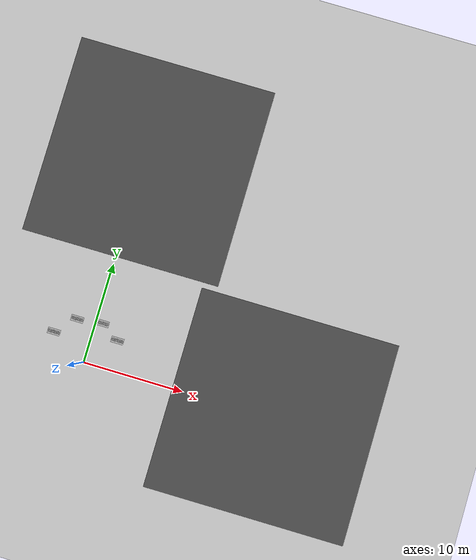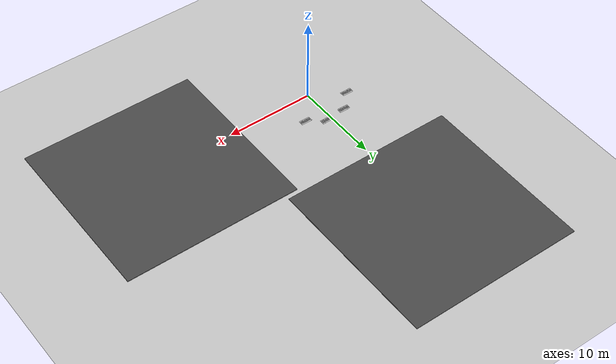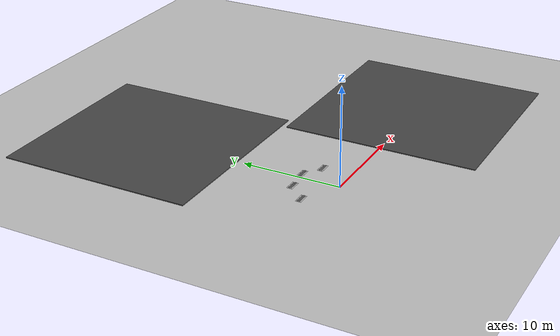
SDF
<sdf version="1.6">
 <world name="default">
  <model name="ground_plane">
   <static>1</static>
   <link name="link">
    <collision name="collision">
     <geometry><plane><normal>0 0 1</normal><size>100 100</size></plane></geometry>
     <surface><friction><ode><mu>100</mu><mu2>50</mu2></ode></friction></surface>
    </collision>
    <visual name="visual">
     <cast_shadows>0</cast_shadows>
     <geometry><plane><normal>0 0 1</normal><size>100 100</size></plane></geometry>
     <material>
      <script><uri>file://media/materials/scripts/gazebo.material</uri><name>Gazebo/Grey</name></script>
     </material>
    </visual>
   </link>
  </model>
  <model name="asphalt_plane">
   <static>1</static>
   <link name="link">
    <collision name="collision"><geometry><box><size>20 20 0.1</size></box></geometry></collision>
    <visual name="visual">
     <cast_shadows>0</cast_shadows>
     <geometry><box><size>20 20 0.1</size></box></geometry>
     <material>
      <script>
       <uri>model://asphalt_plane/materials/scripts</uri>
       <uri>model://asphalt_plane/materials/textures</uri>
       <name>vrc/asphalt</name>
      </script>
     </material>
    </visual>
   </link>
   <pose>18.9407 0.223118 0 0 -0 0</pose>
  </model>
  <model name="asphalt_plane_clone">
   <static>1</static>
   <link name="link">
    <collision name="collision"><geometry><box><size>20 20 0.1</size></box></geometry></collision>
    <visual name="visual">
     <cast_shadows>0</cast_shadows>
     <geometry><box><size>20 20 0.1</size></box></geometry>
     <material>
      <script>
       <uri>model://asphalt_plane/materials/scripts</uri>
       <uri>model://asphalt_plane/materials/textures</uri>
       <name>vrc/asphalt</name>
      </script>
     </material>
    </visual>
   </link>
   <pose>0.415085 20.7744 0 0 -0 0</pose>
  </model>
  <model name="frc2016_roughterrain_clone_4">
   <static>1</static>
   <link name="link">
    <visual name="platform">
     <pose>0 0 0.08269 0 -0 0</pose>
     <geometry><box><size>1.27 0.5969 0.003175</size></box></geometry>
    </visual>
    <collision name="platform">
     <pose>0 0 0.08269 0 -0 0</pose>
     <geometry><box><size>1.27 0.5969 0.003175</size></box></geometry>
    </collision>
    <visual name="row1_block1_sm">
     <pose>0.51435 0.1143 0.09698 0 -0 0</pose>
     <geometry><box><size>0.0762 0.0762 0.0254</size></box></geometry>
    </visual>
    <collision name="row1_block1_sm">
     <pose>0.51435 0.1143 0.09698 0 -0 0</pose>
     <geometry><box><size>0.0762 0.0762 0.0254</size></box></geometry>
    </collision>
    <visual name="row1_block2_lg">
     <pose>0.40005 0.1143 0.12238 0 -0 0</pose>
     <geometry><box><size>0.0762 0.0762 0.0762</size></box></geometry>
    </visual>
    <collision name="row1_block2_lg">
     <pose>0.40005 0.1143 0.12238 0 -0 0</pose>
     <geometry><box><size>0.0762 0.0762 0.0762</size></box></geometry>
    </collision>
    <visual name="row1_block3_md">
     <pose>0.28575 0.1143 0.10968 0 -0 0</pose>
     <geometry><box><size>0.0762 0.0762 0.0508</size></box></geometry>
    </visual>
    <collision name="row1_block3_md">
     <pose>0.28575 0.1143 0.10968 0 -0 0</pose>
     <geometry><box><size>0.0762 0.0762 0.0508</size></box></geometry>
    </collision>
    <visual name="row1_block4_sm">
     <pose>0.17145 0.1143 0.09698 0 -0 0</pose>
     <geometry><box><size>0.0762 0.0762 0.0254</size></box></geometry>
    </visual>
    <collision name="row1_block4_sm">
     <pose>0.17145 0.1143 0.09698 0 -0 0</pose>
     <geometry><box><size>0.0762 0.0762 0.0254</size></box></geometry>
    </collision>
    <visual name="row1_block5_md">
     <pose>0.05715 0.1143 0.10968 0 -0 0</pose>
     <geometry><box><size>0.0762 0.0762 0.0508</size></box></geometry>
    </visual>
    <collision name="row1_block5_md">
     <pose>0.05715 0.1143 0.10968 0 -0 0</pose>
     <geometry><box><size>0.0762 0.0762 0.0508</size></box></geometry>
    </collision>
    <visual name="row1_block6_lg">
     <pose>-0.05715 0.1143 0.12238 0 -0 0</pose>
     <geometry><box><size>0.0762 0.0762 0.0762</size></box></geometry>
    </visual>
    <collision name="row1_block6_lg">
     <pose>-0.05715 0.1143 0.12238 0 -0 0</pose>
     <geometry><box><size>0.0762 0.0762 0.0762</size></box></geometry>
    </collision>
    <visual name="row1_block7_sm">
     <pose>-0.17145 0.1143 0.09698 0 -0 0</pose>
     <geometry><box><size>0.0762 0.0762 0.0254</size></box></geometry>
    </visual>
    <collision name="row1_block7_sm">
     <pose>-0.17145 0.1143 0.09698 0 -0 0</pose>
     <geometry><box><size>0.0762 0.0762 0.0254</size></box></geometry>
    </collision>
    <visual name="row1_block8_sm">
     <pose>-0.28575 0.1143 0.09698 0 -0 0</pose>
     <geometry><box><size>0.0762 0.0762 0.0254</size></box></geometry>
    </visual>
    <collision name="row1_block8_sm">
     <pose>-0.28575 0.1143 0.09698 0 -0 0</pose>
     <geometry><box><size>0.0762 0.0762 0.0254</size></box></geometry>
    </collision>
    <visual name="row1_block9_md">
     <pose>-0.40005 0.1143 0.10968 0 -0 0</pose>
     <geometry><box><size>0.0762 0.0762 0.0508</size></box></geometry>
    </visual>
    <collision name="row1_block9_md">
     <pose>-0.40005 0.1143 0.10968 0 -0 0</pose>
     <geometry><box><size>0.0762 0.0762 0.0508</size></box></geometry>
    </collision>
    <visual name="row1_block10_lg">
     <pose>-0.51435 0.1143 0.12238 0 -0 0</pose>
     <geometry><box><size>0.0762 0.0762 0.0762</size></box></geometry>
    </visual>
    <collision name="row1_block10_lg">
     <pose>-0.51435 0.1143 0.12238 0 -0 0</pose>
     <geometry><box><size>0.0762 0.0762 0.0762</size></box></geometry>
    </collision>
    <visual name="row2_block1_md">
     <pose>0.5715 0 0.10968 0 -0 0</pose>
     <geometry><box><size>0.0762 0.0762 0.0508</size></box></geometry>
    </visual>
    <collision name="row2_block1_md">
     <pose>0.5715 0 0.10968 0 -0 0</pose>
     <geometry><box><size>0.0762 0.0762 0.0508</size></box></geometry>
    </collision>
    <visual name="row2_block2_sm">
     <pose>0.4572 0 0.09698 0 -0 0</pose>
     <geometry><box><size>0.0762 0.0762 0.0254</size></box></geometry>
    </visual>
    <collision name="row2_block2_sm">
     <pose>0.4572 0 0.09698 0 -0 0</pose>
     <geometry><box><size>0.0762 0.0762 0.0254</size></box></geometry>
    </collision>
    <visual name="row2_block3_lg">
     <pose>0.3429 0 0.12238 0 -0 0</pose>
     <geometry><box><size>0.0762 0.0762 0.0762</size></box></geometry>
    </visual>
    <collision name="row2_block3_lg">
     <pose>0.3429 0 0.12238 0 -0 0</pose>
     <geometry><box><size>0.0762 0.0762 0.0762</size></box></geometry>
    </collision>
    <visual name="row2_block4_md">
     <pose>0.2286 0 0.10968 0 -0 0</pose>
     <geometry><box><size>0.0762 0.0762 0.0508</size></box></geometry>
    </visual>
    <collision name="row2_block4_md">
     <pose>0.2286 0 0.10968 0 -0 0</pose>
     <geometry><box><size>0.0762 0.0762 0.0508</size></box></geometry>
    </collision>
    <visual name="row2_block5_lg">
     <pose>0.1143 0 0.12238 0 -0 0</pose>
     <geometry><box><size>0.0762 0.0762 0.0762</size></box></geometry>
    </visual>
    <collision name="row2_block5_lg">
     <pose>0.1143 0 0.12238 0 -0 0</pose>
     <geometry><box><size>0.0762 0.0762 0.0762</size></box></geometry>
    </collision>
    <visual name="row2_block6_sm">
     <pose>0 0 0.09698 0 -0 0</pose>
     <geometry><box><size>0.0762 0.0762 0.0254</size></box></geometry>
    </visual>
    <collision name="row2_block6_sm">
     <pose>0 0 0.09698 0 -0 0</pose>
     <geometry><box><size>0.0762 0.0762 0.0254</size></box></geometry>
    </collision>
    <visual name="row2_block7_md">
     <pose>-0.1143 0 0.10968 0 -0 0</pose>
     <geometry><box><size>0.0762 0.0762 0.0508</size></box></geometry>
    </visual>
    <collision name="row2_block7_md">
     <pose>-0.1143 0 0.10968 0 -0 0</pose>
     <geometry><box><size>0.0762 0.0762 0.0508</size></box></geometry>
    </collision>
    <visual name="row2_block8_lg">
     <pose>-0.2286 0 0.12238 0 -0 0</pose>
     <geometry><box><size>0.0762 0.0762 0.0762</size></box></geometry>
    </visual>
    <collision name="row2_block8_lg">
     <pose>-0.2286 0 0.12238 0 -0 0</pose>
     <geometry><box><size>0.0762 0.0762 0.0762</size></box></geometry>
    </collision>
    <visual name="row2_block9_sm">
     <pose>-0.3429 0 0.09698 0 -0 0</pose>
     <geometry><box><size>0.0762 0.0762 0.0254</size></box></geometry>
    </visual>
    <collision name="row2_block9_sm">
     <pose>-0.3429 0 0.09698 0 -0 0</pose>
     <geometry><box><size>0.0762 0.0762 0.0254</size></box></geometry>
    </collision>
    <visual name="row2_block10_lg">
     <pose>-0.4572 0 0.12238 0 -0 0</pose>
     <geometry><box><size>0.0762 0.0762 0.0762</size></box></geometry>
    </visual>
    <collision name="row2_block10_lg">
     <pose>-0.4572 0 0.12238 0 -0 0</pose>
     <geometry><box><size>0.0762 0.0762 0.0762</size></box></geometry>
    </collision>
    <visual name="row2_block11_md">
     <pose>-0.5715 0 0.10968 0 -0 0</pose>
     <geometry><box><size>0.0762 0.0762 0.0508</size></box></geometry>
    </visual>
    <collision name="row2_block11_md">
     <pose>-0.5715 0 0.10968 0 -0 0</pose>
     <geometry><box><size>0.0762 0.0762 0.0508</size></box></geometry>
    </collision>
    <visual name="row3_block1_lg">
     <pose>0.51435 -0.1143 0.12238 0 -0 0</pose>
     <geometry><box><size>0.0762 0.0762 0.0762</size></box></geometry>
    </visual>
    <collision name="row3_block1_lg">
     <pose>0.51435 -0.1143 0.12238 0 -0 0</pose>
     <geometry><box><size>0.0762 0.0762 0.0762</size></box></geometry>
    </collision>
    <visual name="row3_block2_md">
     <pose>0.40005 -0.1143 0.10968 0 -0 0</pose>
     <geometry><box><size>0.0762 0.0762 0.0508</size></box></geometry>
    </visual>
    <collision name="row3_block2_md">
     <pose>0.40005 -0.1143 0.10968 0 -0 0</pose>
     <geometry><box><size>0.0762 0.0762 0.0508</size></box></geometry>
    </collision>
    <visual name="row3_block3_lg">
     <pose>0.28575 -0.1143 0.12238 0 -0 0</pose>
     <geometry><box><size>0.0762 0.0762 0.0762</size></box></geometry>
    </visual>
    <collision name="row3_block3_lg">
     <pose>0.28575 -0.1143 0.12238 0 -0 0</pose>
     <geometry><box><size>0.0762 0.0762 0.0762</size></box></geometry>
    </collision>
    <visual name="row3_block4_sm">
     <pose>0.17145 -0.1143 0.09698 0 -0 0</pose>
     <geometry><box><size>0.0762 0.0762 0.0254</size></box></geometry>
    </visual>
    <collision name="row3_block4_sm">
     <pose>0.17145 -0.1143 0.09698 0 -0 0</pose>
     <geometry><box><size>0.0762 0.0762 0.0254</size></box></geometry>
    </collision>
    <visual name="row3_block5_md">
     <pose>0.05715 -0.1143 0.10968 0 -0 0</pose>
     <geometry><box><size>0.0762 0.0762 0.0508</size></box></geometry>
    </visual>
    <collision name="row3_block5_md">
     <pose>0.05715 -0.1143 0.10968 0 -0 0</pose>
     <geometry><box><size>0.0762 0.0762 0.0508</size></box></geometry>
    </collision>
    <visual name="row3_block6_md">
     <pose>-0.05715 -0.1143 0.10968 0 -0 0</pose>
     <geometry><box><size>0.0762 0.0762 0.0508</size></box></geometry>
    </visual>
    <collision name="row3_block6_md">
     <pose>-0.05715 -0.1143 0.10968 0 -0 0</pose>
     <geometry><box><size>0.0762 0.0762 0.0508</size></box></geometry>
    </collision>
    <visual name="row3_block7_lg">
     <pose>-0.17145 -0.1143 0.12238 0 -0 0</pose>
     <geometry><box><size>0.0762 0.0762 0.0762</size></box></geometry>
    </visual>
    <collision name="row3_block7_lg">
     <pose>-0.17145 -0.1143 0.12238 0 -0 0</pose>
     <geometry><box><size>0.0762 0.0762 0.0762</size></box></geometry>
    </collision>
    <visual name="row3_block8_sm">
     <pose>-0.28575 -0.1143 0.09698 0 -0 0</pose>
     <geometry><box><size>0.0762 0.0762 0.0254</size></box></geometry>
    </visual>
    <collision name="row3_block8_sm">
     <pose>-0.28575 -0.1143 0.09698 0 -0 0</pose>
     <geometry><box><size>0.0762 0.0762 0.0254</size></box></geometry>
    </collision>
    <visual name="row3_block9_md">
     <pose>-0.40005 -0.1143 0.10968 0 -0 0</pose>
     <geometry><box><size>0.0762 0.0762 0.0508</size></box></geometry>
    </visual>
    <collision name="row3_block9_md">
     <pose>-0.40005 -0.1143 0.10968 0 -0 0</pose>
     <geometry><box><size>0.0762 0.0762 0.0508</size></box></geometry>
    </collision>
    <visual name="row3_block10_sm">
     <pose>-0.51435 -0.1143 0.09698 0 -0 0</pose>
     <geometry><box><size>0.0762 0.0762 0.0254</size></box></geometry>
    </visual>
    <collision name="row3_block10_sm">
     <pose>-0.51435 -0.1143 0.09698 0 -0 0</pose>
     <geometry><box><size>0.0762 0.0762 0.0254</size></box></geometry>
    </collision>
   </link>
   <pose>2.5073 2.96865 0 0 -0 0</pose>
  </model>
  <model name="frc2016_roughterrain_clone_7">
   <static>1</static>
   <link name="link">
    <visual name="platform">
     <pose>0 0 0.08269 0 -0 0</pose>
     <geometry><box><size>1.27 0.5969 0.003175</size></box></geometry>
    </visual>
    <collision name="platform">
     <pose>0 0 0.08269 0 -0 0</pose>
     <geometry><box><size>1.27 0.5969 0.003175</size></box></geometry>
    </collision>
    <visual name="row1_block1_sm">
     <pose>0.51435 0.1143 0.09698 0 -0 0</pose>
     <geometry><box><size>0.0762 0.0762 0.0254</size></box></geometry>
    </visual>
    <collision name="row1_block1_sm">
     <pose>0.51435 0.1143 0.09698 0 -0 0</pose>
     <geometry><box><size>0.0762 0.0762 0.0254</size></box></geometry>
    </collision>
    <visual name="row1_block2_lg">
     <pose>0.40005 0.1143 0.12238 0 -0 0</pose>
     <geometry><box><size>0.0762 0.0762 0.0762</size></box></geometry>
    </visual>
    <collision name="row1_block2_lg">
     <pose>0.40005 0.1143 0.12238 0 -0 0</pose>
     <geometry><box><size>0.0762 0.0762 0.0762</size></box></geometry>
    </collision>
    <visual name="row1_block3_md">
     <pose>0.28575 0.1143 0.10968 0 -0 0</pose>
     <geometry><box><size>0.0762 0.0762 0.0508</size></box></geometry>
    </visual>
    <collision name="row1_block3_md">
     <pose>0.28575 0.1143 0.10968 0 -0 0</pose>
     <geometry><box><size>0.0762 0.0762 0.0508</size></box></geometry>
    </collision>
    <visual name="row1_block4_sm">
     <pose>0.17145 0.1143 0.09698 0 -0 0</pose>
     <geometry><box><size>0.0762 0.0762 0.0254</size></box></geometry>
    </visual>
    <collision name="row1_block4_sm">
     <pose>0.17145 0.1143 0.09698 0 -0 0</pose>
     <geometry><box><size>0.0762 0.0762 0.0254</size></box></geometry>
    </collision>
    <visual name="row1_block5_md">
     <pose>0.05715 0.1143 0.10968 0 -0 0</pose>
     <geometry><box><size>0.0762 0.0762 0.0508</size></box></geometry>
    </visual>
    <collision name="row1_block5_md">
     <pose>0.05715 0.1143 0.10968 0 -0 0</pose>
     <geometry><box><size>0.0762 0.0762 0.0508</size></box></geometry>
    </collision>
    <visual name="row1_block6_lg">
     <pose>-0.05715 0.1143 0.12238 0 -0 0</pose>
     <geometry><box><size>0.0762 0.0762 0.0762</size></box></geometry>
    </visual>
    <collision name="row1_block6_lg">
     <pose>-0.05715 0.1143 0.12238 0 -0 0</pose>
     <geometry><box><size>0.0762 0.0762 0.0762</size></box></geometry>
    </collision>
    <visual name="row1_block7_sm">
     <pose>-0.17145 0.1143 0.09698 0 -0 0</pose>
     <geometry><box><size>0.0762 0.0762 0.0254</size></box></geometry>
    </visual>
    <collision name="row1_block7_sm">
     <pose>-0.17145 0.1143 0.09698 0 -0 0</pose>
     <geometry><box><size>0.0762 0.0762 0.0254</size></box></geometry>
    </collision>
    <visual name="row1_block8_sm">
     <pose>-0.28575 0.1143 0.09698 0 -0 0</pose>
     <geometry><box><size>0.0762 0.0762 0.0254</size></box></geometry>
    </visual>
    <collision name="row1_block8_sm">
     <pose>-0.28575 0.1143 0.09698 0 -0 0</pose>
     <geometry><box><size>0.0762 0.0762 0.0254</size></box></geometry>
    </collision>
    <visual name="row1_block9_md">
     <pose>-0.40005 0.1143 0.10968 0 -0 0</pose>
     <geometry><box><size>0.0762 0.0762 0.0508</size></box></geometry>
    </visual>
    <collision name="row1_block9_md">
     <pose>-0.40005 0.1143 0.10968 0 -0 0</pose>
     <geometry><box><size>0.0762 0.0762 0.0508</size></box></geometry>
    </collision>
    <visual name="row1_block10_lg">
     <pose>-0.51435 0.1143 0.12238 0 -0 0</pose>
     <geometry><box><size>0.0762 0.0762 0.0762</size></box></geometry>
    </visual>
    <collision name="row1_block10_lg">
     <pose>-0.51435 0.1143 0.12238 0 -0 0</pose>
     <geometry><box><size>0.0762 0.0762 0.0762</size></box></geometry>
    </collision>
    <visual name="row2_block1_md">
     <pose>0.5715 0 0.10968 0 -0 0</pose>
     <geometry><box><size>0.0762 0.0762 0.0508</size></box></geometry>
    </visual>
    <collision name="row2_block1_md">
     <pose>0.5715 0 0.10968 0 -0 0</pose>
     <geometry><box><size>0.0762 0.0762 0.0508</size></box></geometry>
    </collision>
    <visual name="row2_block2_sm">
     <pose>0.4572 0 0.09698 0 -0 0</pose>
     <geometry><box><size>0.0762 0.0762 0.0254</size></box></geometry>
    </visual>
    <collision name="row2_block2_sm">
     <pose>0.4572 0 0.09698 0 -0 0</pose>
     <geometry><box><size>0.0762 0.0762 0.0254</size></box></geometry>
    </collision>
    <visual name="row2_block3_lg">
     <pose>0.3429 0 0.12238 0 -0 0</pose>
     <geometry><box><size>0.0762 0.0762 0.0762</size></box></geometry>
    </visual>
    <collision name="row2_block3_lg">
     <pose>0.3429 0 0.12238 0 -0 0</pose>
     <geometry><box><size>0.0762 0.0762 0.0762</size></box></geometry>
    </collision>
    <visual name="row2_block4_md">
     <pose>0.2286 0 0.10968 0 -0 0</pose>
     <geometry><box><size>0.0762 0.0762 0.0508</size></box></geometry>
    </visual>
    <collision name="row2_block4_md">
     <pose>0.2286 0 0.10968 0 -0 0</pose>
     <geometry><box><size>0.0762 0.0762 0.0508</size></box></geometry>
    </collision>
    <visual name="row2_block5_lg">
     <pose>0.1143 0 0.12238 0 -0 0</pose>
     <geometry><box><size>0.0762 0.0762 0.0762</size></box></geometry>
    </visual>
    <collision name="row2_block5_lg">
     <pose>0.1143 0 0.12238 0 -0 0</pose>
     <geometry><box><size>0.0762 0.0762 0.0762</size></box></geometry>
    </collision>
    <visual name="row2_block6_sm">
     <pose>0 0 0.09698 0 -0 0</pose>
     <geometry><box><size>0.0762 0.0762 0.0254</size></box></geometry>
    </visual>
    <collision name="row2_block6_sm">
     <pose>0 0 0.09698 0 -0 0</pose>
     <geometry><box><size>0.0762 0.0762 0.0254</size></box></geometry>
    </collision>
    <visual name="row2_block7_md">
     <pose>-0.1143 0 0.10968 0 -0 0</pose>
     <geometry><box><size>0.0762 0.0762 0.0508</size></box></geometry>
    </visual>
    <collision name="row2_block7_md">
     <pose>-0.1143 0 0.10968 0 -0 0</pose>
     <geometry><box><size>0.0762 0.0762 0.0508</size></box></geometry>
    </collision>
    <visual name="row2_block8_lg">
     <pose>-0.2286 0 0.12238 0 -0 0</pose>
     <geometry><box><size>0.0762 0.0762 0.0762</size></box></geometry>
    </visual>
    <collision name="row2_block8_lg">
     <pose>-0.2286 0 0.12238 0 -0 0</pose>
     <geometry><box><size>0.0762 0.0762 0.0762</size></box></geometry>
    </collision>
    <visual name="row2_block9_sm">
     <pose>-0.3429 0 0.09698 0 -0 0</pose>
     <geometry><box><size>0.0762 0.0762 0.0254</size></box></geometry>
    </visual>
    <collision name="row2_block9_sm">
     <pose>-0.3429 0 0.09698 0 -0 0</pose>
     <geometry><box><size>0.0762 0.0762 0.0254</size></box></geometry>
    </collision>
    <visual name="row2_block10_lg">
     <pose>-0.4572 0 0.12238 0 -0 0</pose>
     <geometry><box><size>0.0762 0.0762 0.0762</size></box></geometry>
    </visual>
    <collision name="row2_block10_lg">
     <pose>-0.4572 0 0.12238 0 -0 0</pose>
     <geometry><box><size>0.0762 0.0762 0.0762</size></box></geometry>
    </collision>
    <visual name="row2_block11_md">
     <pose>-0.5715 0 0.10968 0 -0 0</pose>
     <geometry><box><size>0.0762 0.0762 0.0508</size></box></geometry>
    </visual>
    <collision name="row2_block11_md">
     <pose>-0.5715 0 0.10968 0 -0 0</pose>
     <geometry><box><size>0.0762 0.0762 0.0508</size></box></geometry>
    </collision>
    <visual name="row3_block1_lg">
     <pose>0.51435 -0.1143 0.12238 0 -0 0</pose>
     <geometry><box><size>0.0762 0.0762 0.0762</size></box></geometry>
    </visual>
    <collision name="row3_block1_lg">
     <pose>0.51435 -0.1143 0.12238 0 -0 0</pose>
     <geometry><box><size>0.0762 0.0762 0.0762</size></box></geometry>
    </collision>
    <visual name="row3_block2_md">
     <pose>0.40005 -0.1143 0.10968 0 -0 0</pose>
     <geometry><box><size>0.0762 0.0762 0.0508</size></box></geometry>
    </visual>
    <collision name="row3_block2_md">
     <pose>0.40005 -0.1143 0.10968 0 -0 0</pose>
     <geometry><box><size>0.0762 0.0762 0.0508</size></box></geometry>
    </collision>
    <visual name="row3_block3_lg">
     <pose>0.28575 -0.1143 0.12238 0 -0 0</pose>
     <geometry><box><size>0.0762 0.0762 0.0762</size></box></geometry>
    </visual>
    <collision name="row3_block3_lg">
     <pose>0.28575 -0.1143 0.12238 0 -0 0</pose>
     <geometry><box><size>0.0762 0.0762 0.0762</size></box></geometry>
    </collision>
    <visual name="row3_block4_sm">
     <pose>0.17145 -0.1143 0.09698 0 -0 0</pose>
     <geometry><box><size>0.0762 0.0762 0.0254</size></box></geometry>
    </visual>
    <collision name="row3_block4_sm">
     <pose>0.17145 -0.1143 0.09698 0 -0 0</pose>
     <geometry><box><size>0.0762 0.0762 0.0254</size></box></geometry>
    </collision>
    <visual name="row3_block5_md">
     <pose>0.05715 -0.1143 0.10968 0 -0 0</pose>
     <geometry><box><size>0.0762 0.0762 0.0508</size></box></geometry>
    </visual>
    <collision name="row3_block5_md">
     <pose>0.05715 -0.1143 0.10968 0 -0 0</pose>
     <geometry><box><size>0.0762 0.0762 0.0508</size></box></geometry>
    </collision>
    <visual name="row3_block6_md">
     <pose>-0.05715 -0.1143 0.10968 0 -0 0</pose>
     <geometry><box><size>0.0762 0.0762 0.0508</size></box></geometry>
    </visual>
    <collision name="row3_block6_md">
     <pose>-0.05715 -0.1143 0.10968 0 -0 0</pose>
     <geometry><box><size>0.0762 0.0762 0.0508</size></box></geometry>
    </collision>
    <visual name="row3_block7_lg">
     <pose>-0.17145 -0.1143 0.12238 0 -0 0</pose>
     <geometry><box><size>0.0762 0.0762 0.0762</size></box></geometry>
    </visual>
    <collision name="row3_block7_lg">
     <pose>-0.17145 -0.1143 0.12238 0 -0 0</pose>
     <geometry><box><size>0.0762 0.0762 0.0762</size></box></geometry>
    </collision>
    <visual name="row3_block8_sm">
     <pose>-0.28575 -0.1143 0.09698 0 -0 0</pose>
     <geometry><box><size>0.0762 0.0762 0.0254</size></box></geometry>
    </visual>
    <collision name="row3_block8_sm">
     <pose>-0.28575 -0.1143 0.09698 0 -0 0</pose>
     <geometry><box><size>0.0762 0.0762 0.0254</size></box></geometry>
    </collision>
    <visual name="row3_block9_md">
     <pose>-0.40005 -0.1143 0.10968 0 -0 0</pose>
     <geometry><box><size>0.0762 0.0762 0.0508</size></box></geometry>
    </visual>
    <collision name="row3_block9_md">
     <pose>-0.40005 -0.1143 0.10968 0 -0 0</pose>
     <geometry><box><size>0.0762 0.0762 0.0508</size></box></geometry>
    </collision>
    <visual name="row3_block10_sm">
     <pose>-0.51435 -0.1143 0.09698 0 -0 0</pose>
     <geometry><box><size>0.0762 0.0762 0.0254</size></box></geometry>
    </visual>
    <collision name="row3_block10_sm">
     <pose>-0.51435 -0.1143 0.09698 0 -0 0</pose>
     <geometry><box><size>0.0762 0.0762 0.0254</size></box></geometry>
    </collision>
   </link>
   <pose>-3.66899 2.05721 0 0 -0 0</pose>
  </model>
  <model name="frc2016_roughterrain_clone_8">
   <static>1</static>
   <link name="link">
    <visual name="platform">
     <pose>0 0 0.08269 0 -0 0</pose>
     <geometry><box><size>1.27 0.5969 0.003175</size></box></geometry>
    </visual>
    <collision name="platform">
     <pose>0 0 0.08269 0 -0 0</pose>
     <geometry><box><size>1.27 0.5969 0.003175</size></box></geometry>
    </collision>
    <visual name="row1_block1_sm">
     <pose>0.51435 0.1143 0.09698 0 -0 0</pose>
     <geometry><box><size>0.0762 0.0762 0.0254</size></box></geometry>
    </visual>
    <collision name="row1_block1_sm">
     <pose>0.51435 0.1143 0.09698 0 -0 0</pose>
     <geometry><box><size>0.0762 0.0762 0.0254</size></box></geometry>
    </collision>
    <visual name="row1_block2_lg">
     <pose>0.40005 0.1143 0.12238 0 -0 0</pose>
     <geometry><box><size>0.0762 0.0762 0.0762</size></box></geometry>
    </visual>
    <collision name="row1_block2_lg">
     <pose>0.40005 0.1143 0.12238 0 -0 0</pose>
     <geometry><box><size>0.0762 0.0762 0.0762</size></box></geometry>
    </collision>
    <visual name="row1_block3_md">
     <pose>0.28575 0.1143 0.10968 0 -0 0</pose>
     <geometry><box><size>0.0762 0.0762 0.0508</size></box></geometry>
    </visual>
    <collision name="row1_block3_md">
     <pose>0.28575 0.1143 0.10968 0 -0 0</pose>
     <geometry><box><size>0.0762 0.0762 0.0508</size></box></geometry>
    </collision>
    <visual name="row1_block4_sm">
     <pose>0.17145 0.1143 0.09698 0 -0 0</pose>
     <geometry><box><size>0.0762 0.0762 0.0254</size></box></geometry>
    </visual>
    <collision name="row1_block4_sm">
     <pose>0.17145 0.1143 0.09698 0 -0 0</pose>
     <geometry><box><size>0.0762 0.0762 0.0254</size></box></geometry>
    </collision>
    <visual name="row1_block5_md">
     <pose>0.05715 0.1143 0.10968 0 -0 0</pose>
     <geometry><box><size>0.0762 0.0762 0.0508</size></box></geometry>
    </visual>
    <collision name="row1_block5_md">
     <pose>0.05715 0.1143 0.10968 0 -0 0</pose>
     <geometry><box><size>0.0762 0.0762 0.0508</size></box></geometry>
    </collision>
    <visual name="row1_block6_lg">
     <pose>-0.05715 0.1143 0.12238 0 -0 0</pose>
     <geometry><box><size>0.0762 0.0762 0.0762</size></box></geometry>
    </visual>
    <collision name="row1_block6_lg">
     <pose>-0.05715 0.1143 0.12238 0 -0 0</pose>
     <geometry><box><size>0.0762 0.0762 0.0762</size></box></geometry>
    </collision>
    <visual name="row1_block7_sm">
     <pose>-0.17145 0.1143 0.09698 0 -0 0</pose>
     <geometry><box><size>0.0762 0.0762 0.0254</size></box></geometry>
    </visual>
    <collision name="row1_block7_sm">
     <pose>-0.17145 0.1143 0.09698 0 -0 0</pose>
     <geometry><box><size>0.0762 0.0762 0.0254</size></box></geometry>
    </collision>
    <visual name="row1_block8_sm">
     <pose>-0.28575 0.1143 0.09698 0 -0 0</pose>
     <geometry><box><size>0.0762 0.0762 0.0254</size></box></geometry>
    </visual>
    <collision name="row1_block8_sm">
     <pose>-0.28575 0.1143 0.09698 0 -0 0</pose>
     <geometry><box><size>0.0762 0.0762 0.0254</size></box></geometry>
    </collision>
    <visual name="row1_block9_md">
     <pose>-0.40005 0.1143 0.10968 0 -0 0</pose>
     <geometry><box><size>0.0762 0.0762 0.0508</size></box></geometry>
    </visual>
    <collision name="row1_block9_md">
     <pose>-0.40005 0.1143 0.10968 0 -0 0</pose>
     <geometry><box><size>0.0762 0.0762 0.0508</size></box></geometry>
    </collision>
    <visual name="row1_block10_lg">
     <pose>-0.51435 0.1143 0.12238 0 -0 0</pose>
     <geometry><box><size>0.0762 0.0762 0.0762</size></box></geometry>
    </visual>
    <collision name="row1_block10_lg">
     <pose>-0.51435 0.1143 0.12238 0 -0 0</pose>
     <geometry><box><size>0.0762 0.0762 0.0762</size></box></geometry>
    </collision>
    <visual name="row2_block1_md">
     <pose>0.5715 0 0.10968 0 -0 0</pose>
     <geometry><box><size>0.0762 0.0762 0.0508</size></box></geometry>
    </visual>
    <collision name="row2_block1_md">
     <pose>0.5715 0 0.10968 0 -0 0</pose>
     <geometry><box><size>0.0762 0.0762 0.0508</size></box></geometry>
    </collision>
    <visual name="row2_block2_sm">
     <pose>0.4572 0 0.09698 0 -0 0</pose>
     <geometry><box><size>0.0762 0.0762 0.0254</size></box></geometry>
    </visual>
    <collision name="row2_block2_sm">
     <pose>0.4572 0 0.09698 0 -0 0</pose>
     <geometry><box><size>0.0762 0.0762 0.0254</size></box></geometry>
    </collision>
    <visual name="row2_block3_lg">
     <pose>0.3429 0 0.12238 0 -0 0</pose>
     <geometry><box><size>0.0762 0.0762 0.0762</size></box></geometry>
    </visual>
    <collision name="row2_block3_lg">
     <pose>0.3429 0 0.12238 0 -0 0</pose>
     <geometry><box><size>0.0762 0.0762 0.0762</size></box></geometry>
    </collision>
    <visual name="row2_block4_md">
     <pose>0.2286 0 0.10968 0 -0 0</pose>
     <geometry><box><size>0.0762 0.0762 0.0508</size></box></geometry>
    </visual>
    <collision name="row2_block4_md">
     <pose>0.2286 0 0.10968 0 -0 0</pose>
     <geometry><box><size>0.0762 0.0762 0.0508</size></box></geometry>
    </collision>
    <visual name="row2_block5_lg">
     <pose>0.1143 0 0.12238 0 -0 0</pose>
     <geometry><box><size>0.0762 0.0762 0.0762</size></box></geometry>
    </visual>
    <collision name="row2_block5_lg">
     <pose>0.1143 0 0.12238 0 -0 0</pose>
     <geometry><box><size>0.0762 0.0762 0.0762</size></box></geometry>
    </collision>
    <visual name="row2_block6_sm">
     <pose>0 0 0.09698 0 -0 0</pose>
     <geometry><box><size>0.0762 0.0762 0.0254</size></box></geometry>
    </visual>
    <collision name="row2_block6_sm">
     <pose>0 0 0.09698 0 -0 0</pose>
     <geometry><box><size>0.0762 0.0762 0.0254</size></box></geometry>
    </collision>
    <visual name="row2_block7_md">
     <pose>-0.1143 0 0.10968 0 -0 0</pose>
     <geometry><box><size>0.0762 0.0762 0.0508</size></box></geometry>
    </visual>
    <collision name="row2_block7_md">
     <pose>-0.1143 0 0.10968 0 -0 0</pose>
     <geometry><box><size>0.0762 0.0762 0.0508</size></box></geometry>
    </collision>
    <visual name="row2_block8_lg">
     <pose>-0.2286 0 0.12238 0 -0 0</pose>
     <geometry><box><size>0.0762 0.0762 0.0762</size></box></geometry>
    </visual>
    <collision name="row2_block8_lg">
     <pose>-0.2286 0 0.12238 0 -0 0</pose>
     <geometry><box><size>0.0762 0.0762 0.0762</size></box></geometry>
    </collision>
    <visual name="row2_block9_sm">
     <pose>-0.3429 0 0.09698 0 -0 0</pose>
     <geometry><box><size>0.0762 0.0762 0.0254</size></box></geometry>
    </visual>
    <collision name="row2_block9_sm">
     <pose>-0.3429 0 0.09698 0 -0 0</pose>
     <geometry><box><size>0.0762 0.0762 0.0254</size></box></geometry>
    </collision>
    <visual name="row2_block10_lg">
     <pose>-0.4572 0 0.12238 0 -0 0</pose>
     <geometry><box><size>0.0762 0.0762 0.0762</size></box></geometry>
    </visual>
    <collision name="row2_block10_lg">
     <pose>-0.4572 0 0.12238 0 -0 0</pose>
     <geometry><box><size>0.0762 0.0762 0.0762</size></box></geometry>
    </collision>
    <visual name="row2_block11_md">
     <pose>-0.5715 0 0.10968 0 -0 0</pose>
     <geometry><box><size>0.0762 0.0762 0.0508</size></box></geometry>
    </visual>
    <collision name="row2_block11_md">
     <pose>-0.5715 0 0.10968 0 -0 0</pose>
     <geometry><box><size>0.0762 0.0762 0.0508</size></box></geometry>
    </collision>
    <visual name="row3_block1_lg">
     <pose>0.51435 -0.1143 0.12238 0 -0 0</pose>
     <geometry><box><size>0.0762 0.0762 0.0762</size></box></geometry>
    </visual>
    <collision name="row3_block1_lg">
     <pose>0.51435 -0.1143 0.12238 0 -0 0</pose>
     <geometry><box><size>0.0762 0.0762 0.0762</size></box></geometry>
    </collision>
    <visual name="row3_block2_md">
     <pose>0.40005 -0.1143 0.10968 0 -0 0</pose>
     <geometry><box><size>0.0762 0.0762 0.0508</size></box></geometry>
    </visual>
    <collision name="row3_block2_md">
     <pose>0.40005 -0.1143 0.10968 0 -0 0</pose>
     <geometry><box><size>0.0762 0.0762 0.0508</size></box></geometry>
    </collision>
    <visual name="row3_block3_lg">
     <pose>0.28575 -0.1143 0.12238 0 -0 0</pose>
     <geometry><box><size>0.0762 0.0762 0.0762</size></box></geometry>
    </visual>
    <collision name="row3_block3_lg">
     <pose>0.28575 -0.1143 0.12238 0 -0 0</pose>
     <geometry><box><size>0.0762 0.0762 0.0762</size></box></geometry>
    </collision>
    <visual name="row3_block4_sm">
     <pose>0.17145 -0.1143 0.09698 0 -0 0</pose>
     <geometry><box><size>0.0762 0.0762 0.0254</size></box></geometry>
    </visual>
    <collision name="row3_block4_sm">
     <pose>0.17145 -0.1143 0.09698 0 -0 0</pose>
     <geometry><box><size>0.0762 0.0762 0.0254</size></box></geometry>
    </collision>
    <visual name="row3_block5_md">
     <pose>0.05715 -0.1143 0.10968 0 -0 0</pose>
     <geometry><box><size>0.0762 0.0762 0.0508</size></box></geometry>
    </visual>
    <collision name="row3_block5_md">
     <pose>0.05715 -0.1143 0.10968 0 -0 0</pose>
     <geometry><box><size>0.0762 0.0762 0.0508</size></box></geometry>
    </collision>
    <visual name="row3_block6_md">
     <pose>-0.05715 -0.1143 0.10968 0 -0 0</pose>
     <geometry><box><size>0.0762 0.0762 0.0508</size></box></geometry>
    </visual>
    <collision name="row3_block6_md">
     <pose>-0.05715 -0.1143 0.10968 0 -0 0</pose>
     <geometry><box><size>0.0762 0.0762 0.0508</size></box></geometry>
    </collision>
    <visual name="row3_block7_lg">
     <pose>-0.17145 -0.1143 0.12238 0 -0 0</pose>
     <geometry><box><size>0.0762 0.0762 0.0762</size></box></geometry>
    </visual>
    <collision name="row3_block7_lg">
     <pose>-0.17145 -0.1143 0.12238 0 -0 0</pose>
     <geometry><box><size>0.0762 0.0762 0.0762</size></box></geometry>
    </collision>
    <visual name="row3_block8_sm">
     <pose>-0.28575 -0.1143 0.09698 0 -0 0</pose>
     <geometry><box><size>0.0762 0.0762 0.0254</size></box></geometry>
    </visual>
    <collision name="row3_block8_sm">
     <pose>-0.28575 -0.1143 0.09698 0 -0 0</pose>
     <geometry><box><size>0.0762 0.0762 0.0254</size></box></geometry>
    </collision>
    <visual name="row3_block9_md">
     <pose>-0.40005 -0.1143 0.10968 0 -0 0</pose>
     <geometry><box><size>0.0762 0.0762 0.0508</size></box></geometry>
    </visual>
    <collision name="row3_block9_md">
     <pose>-0.40005 -0.1143 0.10968 0 -0 0</pose>
     <geometry><box><size>0.0762 0.0762 0.0508</size></box></geometry>
    </collision>
    <visual name="row3_block10_sm">
     <pose>-0.51435 -0.1143 0.09698 0 -0 0</pose>
     <geometry><box><size>0.0762 0.0762 0.0254</size></box></geometry>
    </visual>
    <collision name="row3_block10_sm">
     <pose>-0.51435 -0.1143 0.09698 0 -0 0</pose>
     <geometry><box><size>0.0762 0.0762 0.0254</size></box></geometry>
    </collision>
   </link>
   <pose>-1.84593 3.88035 0 0 -0 0</pose>
  </model>
  <model name="frc2016_roughterrain_clone_9">
   <static>1</static>
   <link name="link">
    <visual name="platform">
     <pose>0 0 0.08269 0 -0 0</pose>
     <geometry><box><size>1.27 0.5969 0.003175</size></box></geometry>
    </visual>
    <collision name="platform">
     <pose>0 0 0.08269 0 -0 0</pose>
     <geometry><box><size>1.27 0.5969 0.003175</size></box></geometry>
    </collision>
    <visual name="row1_block1_sm">
     <pose>0.51435 0.1143 0.09698 0 -0 0</pose>
     <geometry><box><size>0.0762 0.0762 0.0254</size></box></geometry>
    </visual>
    <collision name="row1_block1_sm">
     <pose>0.51435 0.1143 0.09698 0 -0 0</pose>
     <geometry><box><size>0.0762 0.0762 0.0254</size></box></geometry>
    </collision>
    <visual name="row1_block2_lg">
     <pose>0.40005 0.1143 0.12238 0 -0 0</pose>
     <geometry><box><size>0.0762 0.0762 0.0762</size></box></geometry>
    </visual>
    <collision name="row1_block2_lg">
     <pose>0.40005 0.1143 0.12238 0 -0 0</pose>
     <geometry><box><size>0.0762 0.0762 0.0762</size></box></geometry>
    </collision>
    <visual name="row1_block3_md">
     <pose>0.28575 0.1143 0.10968 0 -0 0</pose>
     <geometry><box><size>0.0762 0.0762 0.0508</size></box></geometry>
    </visual>
    <collision name="row1_block3_md">
     <pose>0.28575 0.1143 0.10968 0 -0 0</pose>
     <geometry><box><size>0.0762 0.0762 0.0508</size></box></geometry>
    </collision>
    <visual name="row1_block4_sm">
     <pose>0.17145 0.1143 0.09698 0 -0 0</pose>
     <geometry><box><size>0.0762 0.0762 0.0254</size></box></geometry>
    </visual>
    <collision name="row1_block4_sm">
     <pose>0.17145 0.1143 0.09698 0 -0 0</pose>
     <geometry><box><size>0.0762 0.0762 0.0254</size></box></geometry>
    </collision>
    <visual name="row1_block5_md">
     <pose>0.05715 0.1143 0.10968 0 -0 0</pose>
     <geometry><box><size>0.0762 0.0762 0.0508</size></box></geometry>
    </visual>
    <collision name="row1_block5_md">
     <pose>0.05715 0.1143 0.10968 0 -0 0</pose>
     <geometry><box><size>0.0762 0.0762 0.0508</size></box></geometry>
    </collision>
    <visual name="row1_block6_lg">
     <pose>-0.05715 0.1143 0.12238 0 -0 0</pose>
     <geometry><box><size>0.0762 0.0762 0.0762</size></box></geometry>
    </visual>
    <collision name="row1_block6_lg">
     <pose>-0.05715 0.1143 0.12238 0 -0 0</pose>
     <geometry><box><size>0.0762 0.0762 0.0762</size></box></geometry>
    </collision>
    <visual name="row1_block7_sm">
     <pose>-0.17145 0.1143 0.09698 0 -0 0</pose>
     <geometry><box><size>0.0762 0.0762 0.0254</size></box></geometry>
    </visual>
    <collision name="row1_block7_sm">
     <pose>-0.17145 0.1143 0.09698 0 -0 0</pose>
     <geometry><box><size>0.0762 0.0762 0.0254</size></box></geometry>
    </collision>
    <visual name="row1_block8_sm">
     <pose>-0.28575 0.1143 0.09698 0 -0 0</pose>
     <geometry><box><size>0.0762 0.0762 0.0254</size></box></geometry>
    </visual>
    <collision name="row1_block8_sm">
     <pose>-0.28575 0.1143 0.09698 0 -0 0</pose>
     <geometry><box><size>0.0762 0.0762 0.0254</size></box></geometry>
    </collision>
    <visual name="row1_block9_md">
     <pose>-0.40005 0.1143 0.10968 0 -0 0</pose>
     <geometry><box><size>0.0762 0.0762 0.0508</size></box></geometry>
    </visual>
    <collision name="row1_block9_md">
     <pose>-0.40005 0.1143 0.10968 0 -0 0</pose>
     <geometry><box><size>0.0762 0.0762 0.0508</size></box></geometry>
    </collision>
    <visual name="row1_block10_lg">
     <pose>-0.51435 0.1143 0.12238 0 -0 0</pose>
     <geometry><box><size>0.0762 0.0762 0.0762</size></box></geometry>
    </visual>
    <collision name="row1_block10_lg">
     <pose>-0.51435 0.1143 0.12238 0 -0 0</pose>
     <geometry><box><size>0.0762 0.0762 0.0762</size></box></geometry>
    </collision>
    <visual name="row2_block1_md">
     <pose>0.5715 0 0.10968 0 -0 0</pose>
     <geometry><box><size>0.0762 0.0762 0.0508</size></box></geometry>
    </visual>
    <collision name="row2_block1_md">
     <pose>0.5715 0 0.10968 0 -0 0</pose>
     <geometry><box><size>0.0762 0.0762 0.0508</size></box></geometry>
    </collision>
    <visual name="row2_block2_sm">
     <pose>0.4572 0 0.09698 0 -0 0</pose>
     <geometry><box><size>0.0762 0.0762 0.0254</size></box></geometry>
    </visual>
    <collision name="row2_block2_sm">
     <pose>0.4572 0 0.09698 0 -0 0</pose>
     <geometry><box><size>0.0762 0.0762 0.0254</size></box></geometry>
    </collision>
    <visual name="row2_block3_lg">
     <pose>0.3429 0 0.12238 0 -0 0</pose>
     <geometry><box><size>0.0762 0.0762 0.0762</size></box></geometry>
    </visual>
    <collision name="row2_block3_lg">
     <pose>0.3429 0 0.12238 0 -0 0</pose>
     <geometry><box><size>0.0762 0.0762 0.0762</size></box></geometry>
    </collision>
    <visual name="row2_block4_md">
     <pose>0.2286 0 0.10968 0 -0 0</pose>
     <geometry><box><size>0.0762 0.0762 0.0508</size></box></geometry>
    </visual>
    <collision name="row2_block4_md">
     <pose>0.2286 0 0.10968 0 -0 0</pose>
     <geometry><box><size>0.0762 0.0762 0.0508</size></box></geometry>
    </collision>
    <visual name="row2_block5_lg">
     <pose>0.1143 0 0.12238 0 -0 0</pose>
     <geometry><box><size>0.0762 0.0762 0.0762</size></box></geometry>
    </visual>
    <collision name="row2_block5_lg">
     <pose>0.1143 0 0.12238 0 -0 0</pose>
     <geometry><box><size>0.0762 0.0762 0.0762</size></box></geometry>
    </collision>
    <visual name="row2_block6_sm">
     <pose>0 0 0.09698 0 -0 0</pose>
     <geometry><box><size>0.0762 0.0762 0.0254</size></box></geometry>
    </visual>
    <collision name="row2_block6_sm">
     <pose>0 0 0.09698 0 -0 0</pose>
     <geometry><box><size>0.0762 0.0762 0.0254</size></box></geometry>
    </collision>
    <visual name="row2_block7_md">
     <pose>-0.1143 0 0.10968 0 -0 0</pose>
     <geometry><box><size>0.0762 0.0762 0.0508</size></box></geometry>
    </visual>
    <collision name="row2_block7_md">
     <pose>-0.1143 0 0.10968 0 -0 0</pose>
     <geometry><box><size>0.0762 0.0762 0.0508</size></box></geometry>
    </collision>
    <visual name="row2_block8_lg">
     <pose>-0.2286 0 0.12238 0 -0 0</pose>
     <geometry><box><size>0.0762 0.0762 0.0762</size></box></geometry>
    </visual>
    <collision name="row2_block8_lg">
     <pose>-0.2286 0 0.12238 0 -0 0</pose>
     <geometry><box><size>0.0762 0.0762 0.0762</size></box></geometry>
    </collision>
    <visual name="row2_block9_sm">
     <pose>-0.3429 0 0.09698 0 -0 0</pose>
     <geometry><box><size>0.0762 0.0762 0.0254</size></box></geometry>
    </visual>
    <collision name="row2_block9_sm">
     <pose>-0.3429 0 0.09698 0 -0 0</pose>
     <geometry><box><size>0.0762 0.0762 0.0254</size></box></geometry>
    </collision>
    <visual name="row2_block10_lg">
     <pose>-0.4572 0 0.12238 0 -0 0</pose>
     <geometry><box><size>0.0762 0.0762 0.0762</size></box></geometry>
    </visual>
    <collision name="row2_block10_lg">
     <pose>-0.4572 0 0.12238 0 -0 0</pose>
     <geometry><box><size>0.0762 0.0762 0.0762</size></box></geometry>
    </collision>
    <visual name="row2_block11_md">
     <pose>-0.5715 0 0.10968 0 -0 0</pose>
     <geometry><box><size>0.0762 0.0762 0.0508</size></box></geometry>
    </visual>
    <collision name="row2_block11_md">
     <pose>-0.5715 0 0.10968 0 -0 0</pose>
     <geometry><box><size>0.0762 0.0762 0.0508</size></box></geometry>
    </collision>
    <visual name="row3_block1_lg">
     <pose>0.51435 -0.1143 0.12238 0 -0 0</pose>
     <geometry><box><size>0.0762 0.0762 0.0762</size></box></geometry>
    </visual>
    <collision name="row3_block1_lg">
     <pose>0.51435 -0.1143 0.12238 0 -0 0</pose>
     <geometry><box><size>0.0762 0.0762 0.0762</size></box></geometry>
    </collision>
    <visual name="row3_block2_md">
     <pose>0.40005 -0.1143 0.10968 0 -0 0</pose>
     <geometry><box><size>0.0762 0.0762 0.0508</size></box></geometry>
    </visual>
    <collision name="row3_block2_md">
     <pose>0.40005 -0.1143 0.10968 0 -0 0</pose>
     <geometry><box><size>0.0762 0.0762 0.0508</size></box></geometry>
    </collision>
    <visual name="row3_block3_lg">
     <pose>0.28575 -0.1143 0.12238 0 -0 0</pose>
     <geometry><box><size>0.0762 0.0762 0.0762</size></box></geometry>
    </visual>
    <collision name="row3_block3_lg">
     <pose>0.28575 -0.1143 0.12238 0 -0 0</pose>
     <geometry><box><size>0.0762 0.0762 0.0762</size></box></geometry>
    </collision>
    <visual name="row3_block4_sm">
     <pose>0.17145 -0.1143 0.09698 0 -0 0</pose>
     <geometry><box><size>0.0762 0.0762 0.0254</size></box></geometry>
    </visual>
    <collision name="row3_block4_sm">
     <pose>0.17145 -0.1143 0.09698 0 -0 0</pose>
     <geometry><box><size>0.0762 0.0762 0.0254</size></box></geometry>
    </collision>
    <visual name="row3_block5_md">
     <pose>0.05715 -0.1143 0.10968 0 -0 0</pose>
     <geometry><box><size>0.0762 0.0762 0.0508</size></box></geometry>
    </visual>
    <collision name="row3_block5_md">
     <pose>0.05715 -0.1143 0.10968 0 -0 0</pose>
     <geometry><box><size>0.0762 0.0762 0.0508</size></box></geometry>
    </collision>
    <visual name="row3_block6_md">
     <pose>-0.05715 -0.1143 0.10968 0 -0 0</pose>
     <geometry><box><size>0.0762 0.0762 0.0508</size></box></geometry>
    </visual>
    <collision name="row3_block6_md">
     <pose>-0.05715 -0.1143 0.10968 0 -0 0</pose>
     <geometry><box><size>0.0762 0.0762 0.0508</size></box></geometry>
    </collision>
    <visual name="row3_block7_lg">
     <pose>-0.17145 -0.1143 0.12238 0 -0 0</pose>
     <geometry><box><size>0.0762 0.0762 0.0762</size></box></geometry>
    </visual>
    <collision name="row3_block7_lg">
     <pose>-0.17145 -0.1143 0.12238 0 -0 0</pose>
     <geometry><box><size>0.0762 0.0762 0.0762</size></box></geometry>
    </collision>
    <visual name="row3_block8_sm">
     <pose>-0.28575 -0.1143 0.09698 0 -0 0</pose>
     <geometry><box><size>0.0762 0.0762 0.0254</size></box></geometry>
    </visual>
    <collision name="row3_block8_sm">
     <pose>-0.28575 -0.1143 0.09698 0 -0 0</pose>
     <geometry><box><size>0.0762 0.0762 0.0254</size></box></geometry>
    </collision>
    <visual name="row3_block9_md">
     <pose>-0.40005 -0.1143 0.10968 0 -0 0</pose>
     <geometry><box><size>0.0762 0.0762 0.0508</size></box></geometry>
    </visual>
    <collision name="row3_block9_md">
     <pose>-0.40005 -0.1143 0.10968 0 -0 0</pose>
     <geometry><box><size>0.0762 0.0762 0.0508</size></box></geometry>
    </collision>
    <visual name="row3_block10_sm">
     <pose>-0.51435 -0.1143 0.09698 0 -0 0</pose>
     <geometry><box><size>0.0762 0.0762 0.0254</size></box></geometry>
    </visual>
    <collision name="row3_block10_sm">
     <pose>-0.51435 -0.1143 0.09698 0 -0 0</pose>
     <geometry><box><size>0.0762 0.0762 0.0254</size></box></geometry>
    </collision>
   </link>
   <pose>0.647121 4.1684 0 0 -0 0</pose>
  </model>
 </world>
</sdf>
